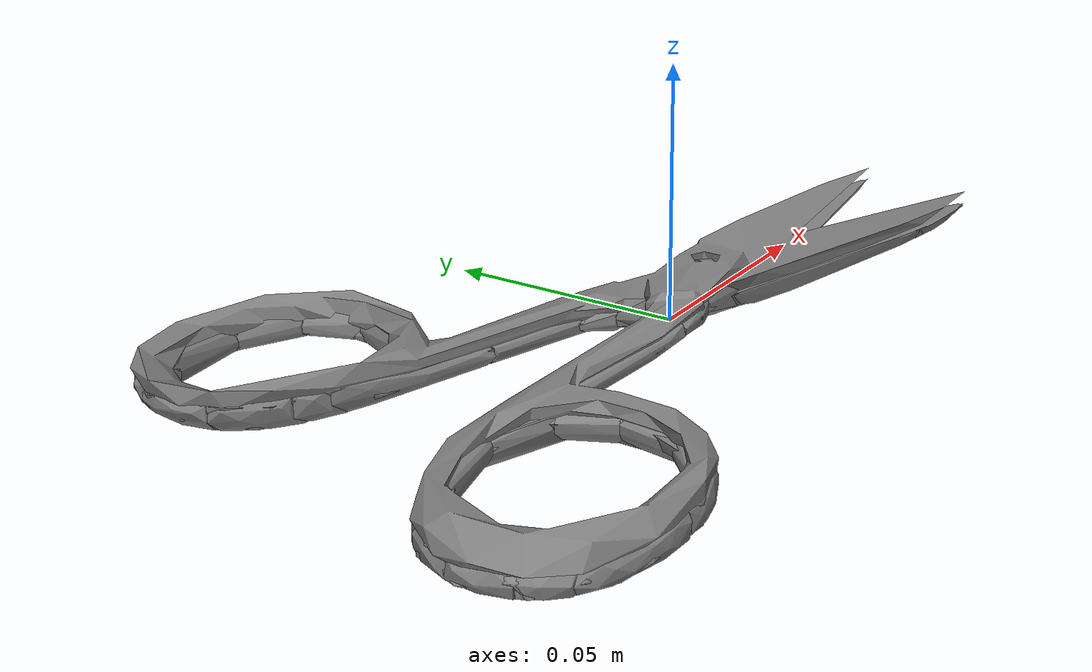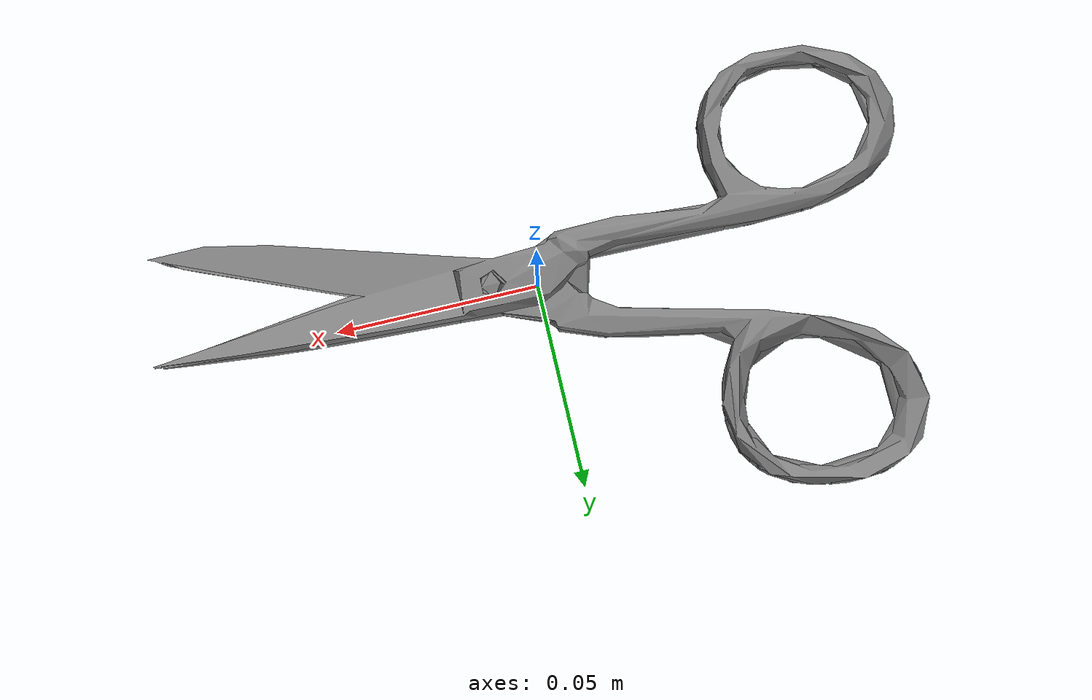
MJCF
<mujoco model="scissors2">
  <asset>
    <mesh file="../../meshes/train/scissors2/simple_mesh.stl" name="scissors2_mesh" scale="1 1 1"/>
    <mesh file="../../meshes/train/scissors2/scissors2_hull_1.stl" name="scissors2_hull_mesh_1" scale="1 1 1"/>
    <mesh file="../../meshes/train/scissors2/scissors2_hull_2.stl" name="scissors2_hull_mesh_2" scale="1 1 1"/>
    <mesh file="../../meshes/train/scissors2/scissors2_hull_3.stl" name="scissors2_hull_mesh_3" scale="1 1 1"/>
    <mesh file="../../meshes/train/scissors2/scissors2_hull_4.stl" name="scissors2_hull_mesh_4" scale="1 1 1"/>
    <mesh file="../../meshes/train/scissors2/scissors2_hull_5.stl" name="scissors2_hull_mesh_5" scale="1 1 1"/>
    <mesh file="../../meshes/train/scissors2/scissors2_hull_6.stl" name="scissors2_hull_mesh_6" scale="1 1 1"/>
    <mesh file="../../meshes/train/scissors2/scissors2_hull_7.stl" name="scissors2_hull_mesh_7" scale="1 1 1"/>
    <mesh file="../../meshes/train/scissors2/scissors2_hull_8.stl" name="scissors2_hull_mesh_8" scale="1 1 1"/>
    <mesh file="../../meshes/train/scissors2/scissors2_hull_9.stl" name="scissors2_hull_mesh_9" scale="1 1 1"/>
    <mesh file="../../meshes/train/scissors2/scissors2_hull_10.stl" name="scissors2_hull_mesh_10" scale="1 1 1"/>
    <mesh file="../../meshes/train/scissors2/scissors2_hull_11.stl" name="scissors2_hull_mesh_11" scale="1 1 1"/>
    <mesh file="../../meshes/train/scissors2/scissors2_hull_12.stl" name="scissors2_hull_mesh_12" scale="1 1 1"/>
    <mesh file="../../meshes/train/scissors2/scissors2_hull_13.stl" name="scissors2_hull_mesh_13" scale="1 1 1"/>
    <mesh file="../../meshes/train/scissors2/scissors2_hull_14.stl" name="scissors2_hull_mesh_14" scale="1 1 1"/>
    <mesh file="../../meshes/train/scissors2/scissors2_hull_15.stl" name="scissors2_hull_mesh_15" scale="1 1 1"/>
    <mesh file="../../meshes/train/scissors2/scissors2_hull_16.stl" name="scissors2_hull_mesh_16" scale="1 1 1"/>
    <mesh file="../../meshes/train/scissors2/scissors2_hull_17.stl" name="scissors2_hull_mesh_17" scale="1 1 1"/>
    <mesh file="../../meshes/train/scissors2/scissors2_hull_18.stl" name="scissors2_hull_mesh_18" scale="1 1 1"/>
    <mesh file="../../meshes/train/scissors2/scissors2_hull_19.stl" name="scissors2_hull_mesh_19" scale="1 1 1"/>
    <mesh file="../../meshes/train/scissors2/scissors2_hull_20.stl" name="scissors2_hull_mesh_20" scale="1 1 1"/>
    <mesh file="../../meshes/train/scissors2/scissors2_hull_21.stl" name="scissors2_hull_mesh_21" scale="1 1 1"/>
    <mesh file="../../meshes/train/scissors2/scissors2_hull_22.stl" name="scissors2_hull_mesh_22" scale="1 1 1"/>
    <mesh file="../../meshes/train/scissors2/scissors2_hull_23.stl" name="scissors2_hull_mesh_23" scale="1 1 1"/>
    <mesh file="../../meshes/train/scissors2/scissors2_hull_24.stl" name="scissors2_hull_mesh_24" scale="1 1 1"/>
    <mesh file="../../meshes/train/scissors2/scissors2_hull_25.stl" name="scissors2_hull_mesh_25" scale="1 1 1"/>
    <mesh file="../../meshes/train/scissors2/scissors2_hull_26.stl" name="scissors2_hull_mesh_26" scale="1 1 1"/>
    <mesh file="../../meshes/train/scissors2/scissors2_hull_27.stl" name="scissors2_hull_mesh_27" scale="1 1 1"/>
    <mesh file="../../meshes/train/scissors2/scissors2_hull_28.stl" name="scissors2_hull_mesh_28" scale="1 1 1"/>
    <mesh file="../../meshes/train/scissors2/scissors2_hull_29.stl" name="scissors2_hull_mesh_29" scale="1 1 1"/>
  </asset>
  <worldbody>
    <body>
      <body name="object">
        <geom pos="0 0 0" mesh="scissors2_mesh" type="mesh" contype="0" conaffinity="0" group="1"/>
        <geom pos="0 0 0" mesh="scissors2_hull_mesh_1" type="mesh" margin="0.001" solimp="0.998 0.998 0.001" solref="0.001 1" density="2000" friction="0.95 0.3 0.1" group="0" condim="4"/>
        <geom pos="0 0 0" mesh="scissors2_hull_mesh_2" type="mesh" margin="0.001" solimp="0.998 0.998 0.001" solref="0.001 1" density="2000" friction="0.95 0.3 0.1" group="0" condim="4"/>
        <geom pos="0 0 0" mesh="scissors2_hull_mesh_3" type="mesh" margin="0.001" solimp="0.998 0.998 0.001" solref="0.001 1" density="2000" friction="0.95 0.3 0.1" group="0" condim="4"/>
        <geom pos="0 0 0" mesh="scissors2_hull_mesh_4" type="mesh" margin="0.001" solimp="0.998 0.998 0.001" solref="0.001 1" density="2000" friction="0.95 0.3 0.1" group="0" condim="4"/>
        <geom pos="0 0 0" mesh="scissors2_hull_mesh_5" type="mesh" margin="0.001" solimp="0.998 0.998 0.001" solref="0.001 1" density="2000" friction="0.95 0.3 0.1" group="0" condim="4"/>
        <geom pos="0 0 0" mesh="scissors2_hull_mesh_6" type="mesh" margin="0.001" solimp="0.998 0.998 0.001" solref="0.001 1" density="2000" friction="0.95 0.3 0.1" group="0" condim="4"/>
        <geom pos="0 0 0" mesh="scissors2_hull_mesh_7" type="mesh" margin="0.001" solimp="0.998 0.998 0.001" solref="0.001 1" density="2000" friction="0.95 0.3 0.1" group="0" condim="4"/>
        <geom pos="0 0 0" mesh="scissors2_hull_mesh_8" type="mesh" margin="0.001" solimp="0.998 0.998 0.001" solref="0.001 1" density="2000" friction="0.95 0.3 0.1" group="0" condim="4"/>
        <geom pos="0 0 0" mesh="scissors2_hull_mesh_9" type="mesh" margin="0.001" solimp="0.998 0.998 0.001" solref="0.001 1" density="2000" friction="0.95 0.3 0.1" group="0" condim="4"/>
        <geom pos="0 0 0" mesh="scissors2_hull_mesh_10" type="mesh" margin="0.001" solimp="0.998 0.998 0.001" solref="0.001 1" density="2000" friction="0.95 0.3 0.1" group="0" condim="4"/>
        <geom pos="0 0 0" mesh="scissors2_hull_mesh_11" type="mesh" margin="0.001" solimp="0.998 0.998 0.001" solref="0.001 1" density="2000" friction="0.95 0.3 0.1" group="0" condim="4"/>
        <geom pos="0 0 0" mesh="scissors2_hull_mesh_12" type="mesh" margin="0.001" solimp="0.998 0.998 0.001" solref="0.001 1" density="2000" friction="0.95 0.3 0.1" group="0" condim="4"/>
        <geom pos="0 0 0" mesh="scissors2_hull_mesh_13" type="mesh" margin="0.001" solimp="0.998 0.998 0.001" solref="0.001 1" density="2000" friction="0.95 0.3 0.1" group="0" condim="4"/>
        <geom pos="0 0 0" mesh="scissors2_hull_mesh_14" type="mesh" margin="0.001" solimp="0.998 0.998 0.001" solref="0.001 1" density="2000" friction="0.95 0.3 0.1" group="0" condim="4"/>
        <geom pos="0 0 0" mesh="scissors2_hull_mesh_15" type="mesh" margin="0.001" solimp="0.998 0.998 0.001" solref="0.001 1" density="2000" friction="0.95 0.3 0.1" group="0" condim="4"/>
        <geom pos="0 0 0" mesh="scissors2_hull_mesh_16" type="mesh" margin="0.001" solimp="0.998 0.998 0.001" solref="0.001 1" density="2000" friction="0.95 0.3 0.1" group="0" condim="4"/>
        <geom pos="0 0 0" mesh="scissors2_hull_mesh_17" type="mesh" margin="0.001" solimp="0.998 0.998 0.001" solref="0.001 1" density="2000" friction="0.95 0.3 0.1" group="0" condim="4"/>
        <geom pos="0 0 0" mesh="scissors2_hull_mesh_18" type="mesh" margin="0.001" solimp="0.998 0.998 0.001" solref="0.001 1" density="2000" friction="0.95 0.3 0.1" group="0" condim="4"/>
        <geom pos="0 0 0" mesh="scissors2_hull_mesh_19" type="mesh" margin="0.001" solimp="0.998 0.998 0.001" solref="0.001 1" density="2000" friction="0.95 0.3 0.1" group="0" condim="4"/>
        <geom pos="0 0 0" mesh="scissors2_hull_mesh_20" type="mesh" margin="0.001" solimp="0.998 0.998 0.001" solref="0.001 1" density="2000" friction="0.95 0.3 0.1" group="0" condim="4"/>
        <geom pos="0 0 0" mesh="scissors2_hull_mesh_21" type="mesh" margin="0.001" solimp="0.998 0.998 0.001" solref="0.001 1" density="2000" friction="0.95 0.3 0.1" group="0" condim="4"/>
        <geom pos="0 0 0" mesh="scissors2_hull_mesh_22" type="mesh" margin="0.001" solimp="0.998 0.998 0.001" solref="0.001 1" density="2000" friction="0.95 0.3 0.1" group="0" condim="4"/>
        <geom pos="0 0 0" mesh="scissors2_hull_mesh_23" type="mesh" margin="0.001" solimp="0.998 0.998 0.001" solref="0.001 1" density="2000" friction="0.95 0.3 0.1" group="0" condim="4"/>
        <geom pos="0 0 0" mesh="scissors2_hull_mesh_24" type="mesh" margin="0.001" solimp="0.998 0.998 0.001" solref="0.001 1" density="2000" friction="0.95 0.3 0.1" group="0" condim="4"/>
        <geom pos="0 0 0" mesh="scissors2_hull_mesh_25" type="mesh" margin="0.001" solimp="0.998 0.998 0.001" solref="0.001 1" density="2000" friction="0.95 0.3 0.1" group="0" condim="4"/>
        <geom pos="0 0 0" mesh="scissors2_hull_mesh_26" type="mesh" margin="0.001" solimp="0.998 0.998 0.001" solref="0.001 1" density="2000" friction="0.95 0.3 0.1" group="0" condim="4"/>
        <geom pos="0 0 0" mesh="scissors2_hull_mesh_27" type="mesh" margin="0.001" solimp="0.998 0.998 0.001" solref="0.001 1" density="2000" friction="0.95 0.3 0.1" group="0" condim="4"/>
        <geom pos="0 0 0" mesh="scissors2_hull_mesh_28" type="mesh" margin="0.001" solimp="0.998 0.998 0.001" solref="0.001 1" density="2000" friction="0.95 0.3 0.1" group="0" condim="4"/>
        <geom pos="0 0 0" mesh="scissors2_hull_mesh_29" type="mesh" margin="0.001" solimp="0.998 0.998 0.001" solref="0.001 1" density="2000" friction="0.95 0.3 0.1" group="0" condim="4"/>
      </body>
      <site rgba="0 0 0 0" size="0.005" pos="0 0 -0.001" name="bottom_site"/>
      <site rgba="0 0 0 0" size="0.005" pos="0 0 0.02" name="top_site"/>
      <site rgba="0 0 0 0" size="0.005" pos="0.0375 0.02 0" name="horizontal_radius_site"/>
    </body>
  </worldbody>
</mujoco>
